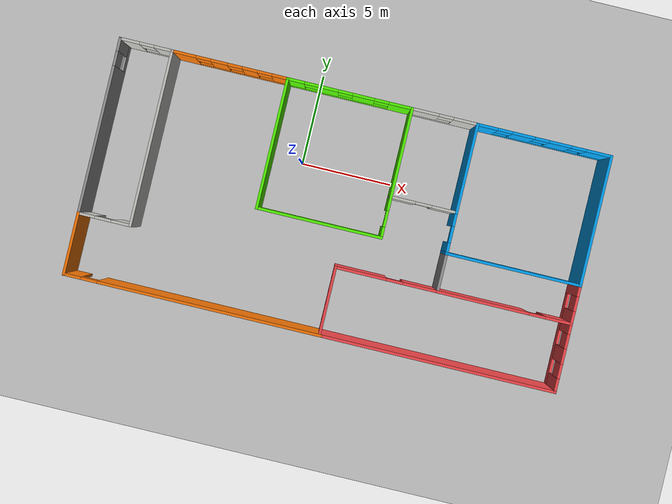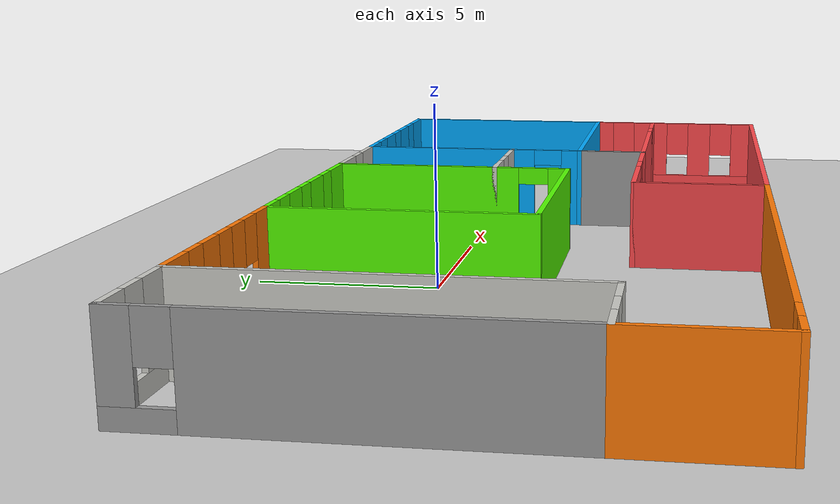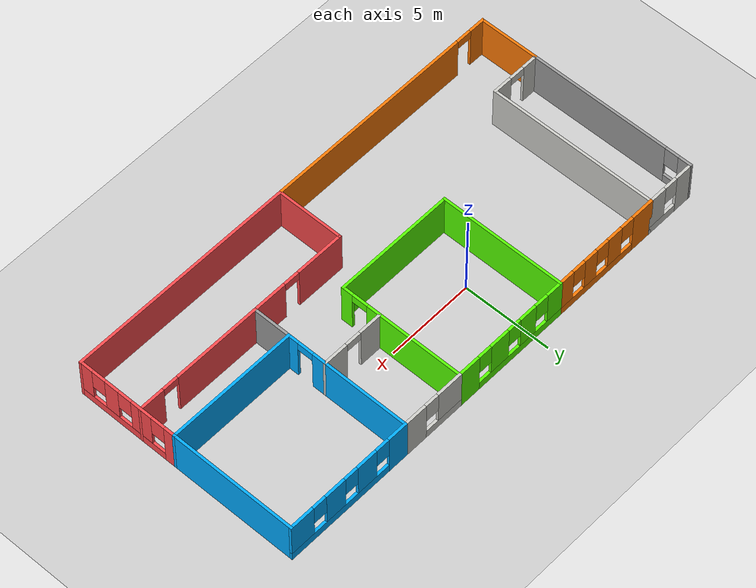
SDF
<sdf version="1.6">
 <world name="default">
  <model name="ground_plane">
   <static>1</static>
   <link name="link">
    <collision name="collision">
     <geometry><plane><normal>0 0 1</normal><size>100 100</size></plane></geometry>
     <surface>
      <contact><collide_bitmask>65535</collide_bitmask></contact>
      <friction><ode><mu>100</mu><mu2>50</mu2></ode></friction>
     </surface>
    </collision>
    <visual name="visual">
     <cast_shadows>0</cast_shadows>
     <geometry><plane><normal>0 0 1</normal><size>100 100</size></plane></geometry>
     <material>
      <script><uri>file://media/materials/scripts/gazebo.material</uri><name>Gazebo/Grey</name></script>
     </material>
    </visual>
   </link>
  </model>
  <model name="house">
   <pose>2.5644 -2.34598 0 0 -0 0</pose>
   <link name="Wall_16">
    <collision name="Wall_16_Collision">
     <geometry><box><size>3.5 0.15 2.5</size></box></geometry>
     <pose>0 0 1.25 0 -0 0</pose>
    </collision>
    <visual name="Wall_16_Visual">
     <pose>0 0 1.25 0 -0 0</pose>
     <geometry><box><size>3.5 0.15 2.5</size></box></geometry>
     <material>
      <script><uri>file://media/materials/scripts/gazebo.material</uri><name>Gazebo/Grey</name></script>
      <ambient>0.996078 0.47451 0.0196078 1</ambient>
     </material>
     <meta><layer>0</layer></meta>
    </visual>
    <pose>-13.5 -4.79998 0 0 -0 1.5708</pose>
   </link>
   <link name="Wall_17">
    <pose>-12.075 -3.12498 0 0 -0 0</pose>
    <visual name="Wall_17_Visual_0">
     <pose>-1.01202 0 1.25 0 -0 0</pose>
     <geometry><box><size>0.97596 0.15 2.5</size></box></geometry>
     <material>
      <script><uri>file://media/materials/scripts/gazebo.material</uri><name>Gazebo/CeilingTiled</name></script>
      <ambient>1 1 1 1</ambient>
     </material>
     <meta><layer>0</layer></meta>
    </visual>
    <collision name="Wall_17_Collision_0">
     <geometry><box><size>0.97596 0.15 2.5</size></box></geometry>
     <pose>-1.01202 0 1.25 0 -0 0</pose>
    </collision>
    <visual name="Wall_17_Visual_1">
     <pose>0.93798 0 1.25 0 -0 0</pose>
     <geometry><box><size>1.12404 0.15 2.5</size></box></geometry>
     <material>
      <script><uri>file://media/materials/scripts/gazebo.material</uri><name>Gazebo/CeilingTiled</name></script>
      <ambient>1 1 1 1</ambient>
     </material>
     <meta><layer>0</layer></meta>
    </visual>
    <collision name="Wall_17_Collision_1">
     <geometry><box><size>1.12404 0.15 2.5</size></box></geometry>
     <pose>0.93798 0 1.25 0 -0 0</pose>
    </collision>
    <visual name="Wall_17_Visual_2">
     <pose>-0.07404 0 2.25 0 -0 0</pose>
     <geometry><box><size>0.9 0.15 0.5</size></box></geometry>
     <material>
      <script><uri>file://media/materials/scripts/gazebo.material</uri><name>Gazebo/CeilingTiled</name></script>
      <ambient>1 1 1 1</ambient>
     </material>
     <meta><layer>0</layer></meta>
    </visual>
    <collision name="Wall_17_Collision_2">
     <geometry><box><size>0.9 0.15 0.5</size></box></geometry>
     <pose>-0.07404 0 2.25 0 -0 0</pose>
    </collision>
   </link>
   <link name="Wall_18">
    <collision name="Wall_18_Collision">
     <geometry><box><size>9.75 0.15 2.5</size></box></geometry>
     <pose>0 0 1.25 0 -0 0</pose>
    </collision>
    <visual name="Wall_18_Visual">
     <pose>0 0 1.25 0 -0 0</pose>
     <geometry><box><size>9.75 0.15 2.5</size></box></geometry>
     <material>
      <script><uri>file://media/materials/scripts/gazebo.material</uri><name>Gazebo/CeilingTiled</name></script>
      <ambient>1 1 1 1</ambient>
     </material>
     <meta><layer>0</layer></meta>
    </visual>
    <pose>-10.65 1.67502 0 0 -0 1.5708</pose>
   </link>
   <link name="Wall_21">
    <pose>-13.5 1.67502 0 0 -0 1.5708</pose>
    <visual name="Wall_21_Visual_0">
     <pose>-0.785204 0 1.25 0 -0 0</pose>
     <geometry><box><size>8.17959 0.15 2.5</size></box></geometry>
     <material>
      <script><uri>file://media/materials/scripts/gazebo.material</uri><name>Gazebo/Grey</name></script>
      <ambient>1 1 1 1</ambient>
     </material>
     <meta><layer>0</layer></meta>
    </visual>
    <collision name="Wall_21_Collision_0">
     <geometry><box><size>8.17959 0.15 2.5</size></box></geometry>
     <pose>-0.785204 0 1.25 0 -0 0</pose>
    </collision>
    <visual name="Wall_21_Visual_1">
     <pose>4.0898 0 0.25 0 -0 0</pose>
     <geometry><box><size>1.57041 0.15 0.5</size></box></geometry>
     <material>
      <script><uri>file://media/materials/scripts/gazebo.material</uri><name>Gazebo/Grey</name></script>
      <ambient>1 1 1 1</ambient>
     </material>
     <meta><layer>0</layer></meta>
    </visual>
    <collision name="Wall_21_Collision_1">
     <geometry><box><size>1.57041 0.15 0.5</size></box></geometry>
     <pose>4.0898 0 0.25 0 -0 0</pose>
    </collision>
    <visual name="Wall_21_Visual_2">
     <pose>4.4898 0 1.5 0 -0 0</pose>
     <geometry><box><size>0.770409 0.15 2</size></box></geometry>
     <material>
      <script><uri>file://media/materials/scripts/gazebo.material</uri><name>Gazebo/Grey</name></script>
      <ambient>1 1 1 1</ambient>
     </material>
     <meta><layer>0</layer></meta>
    </visual>
    <collision name="Wall_21_Collision_2">
     <geometry><box><size>0.770409 0.15 2</size></box></geometry>
     <pose>4.4898 0 1.5 0 -0 0</pose>
    </collision>
    <visual name="Wall_21_Visual_3">
     <pose>3.70459 0 1.9 0 -0 0</pose>
     <geometry><box><size>0.8 0.15 1.2</size></box></geometry>
     <material>
      <script><uri>file://media/materials/scripts/gazebo.material</uri><name>Gazebo/Grey</name></script>
      <ambient>1 1 1 1</ambient>
     </material>
     <meta><layer>0</layer></meta>
    </visual>
    <collision name="Wall_21_Collision_3">
     <geometry><box><size>0.8 0.15 1.2</size></box></geometry>
     <pose>3.70459 0 1.9 0 -0 0</pose>
    </collision>
   </link>
   <link name="Wall_22">
    <pose>-12.075 6.47502 0 0 -0 0</pose>
    <visual name="Wall_22_Visual_0">
     <pose>-0.933912 0 1.25 0 -0 0</pose>
     <geometry><box><size>1.13217 0.15 2.5</size></box></geometry>
     <material>
      <script><uri>file://media/materials/scripts/gazebo.material</uri><name>Gazebo/CeilingTiled</name></script>
      <ambient>1 1 1 1</ambient>
     </material>
     <meta><layer>0</layer></meta>
    </visual>
    <collision name="Wall_22_Collision_0">
     <geometry><box><size>1.13217 0.15 2.5</size></box></geometry>
     <pose>-0.933912 0 1.25 0 -0 0</pose>
    </collision>
    <visual name="Wall_22_Visual_1">
     <pose>0.566088 0 0.25 0 -0 0</pose>
     <geometry><box><size>1.86783 0.15 0.5</size></box></geometry>
     <material>
      <script><uri>file://media/materials/scripts/gazebo.material</uri><name>Gazebo/CeilingTiled</name></script>
      <ambient>1 1 1 1</ambient>
     </material>
     <meta><layer>0</layer></meta>
    </visual>
    <collision name="Wall_22_Collision_1">
     <geometry><box><size>1.86783 0.15 0.5</size></box></geometry>
     <pose>0.566088 0 0.25 0 -0 0</pose>
    </collision>
    <visual name="Wall_22_Visual_2">
     <pose>0.966088 0 1.5 0 -0 0</pose>
     <geometry><box><size>1.06783 0.15 2</size></box></geometry>
     <material>
      <script><uri>file://media/materials/scripts/gazebo.material</uri><name>Gazebo/CeilingTiled</name></script>
      <ambient>1 1 1 1</ambient>
     </material>
     <meta><layer>0</layer></meta>
    </visual>
    <collision name="Wall_22_Collision_2">
     <geometry><box><size>1.06783 0.15 2</size></box></geometry>
     <pose>0.966088 0 1.5 0 -0 0</pose>
    </collision>
    <visual name="Wall_22_Visual_3">
     <pose>0.032175 0 1.9 0 -0 0</pose>
     <geometry><box><size>0.8 0.15 1.2</size></box></geometry>
     <material>
      <script><uri>file://media/materials/scripts/gazebo.material</uri><name>Gazebo/CeilingTiled</name></script>
      <ambient>1 1 1 1</ambient>
     </material>
     <meta><layer>0</layer></meta>
    </visual>
    <collision name="Wall_22_Collision_3">
     <geometry><box><size>0.8 0.15 1.2</size></box></geometry>
     <pose>0.032175 0 1.9 0 -0 0</pose>
    </collision>
   </link>
   <link name="Wall_24">
    <pose>-7.475 6.47502 0 0 -0 0</pose>
    <visual name="Wall_24_Visual_0">
     <pose>-2.56121 0 1.25 0 -0 0</pose>
     <geometry><box><size>1.37759 0.15 2.5</size></box></geometry>
     <material>
      <script><uri>file://media/materials/scripts/gazebo.material</uri><name>Gazebo/Grey</name></script>
      <ambient>0.996078 0.47451 0.0196078 1</ambient>
     </material>
     <meta><layer>0</layer></meta>
    </visual>
    <collision name="Wall_24_Collision_0">
     <geometry><box><size>1.37759 0.15 2.5</size></box></geometry>
     <pose>-2.56121 0 1.25 0 -0 0</pose>
    </collision>
    <visual name="Wall_24_Visual_1">
     <pose>0.688793 0 0.25 0 -0 0</pose>
     <geometry><box><size>5.12241 0.15 0.5</size></box></geometry>
     <material>
      <script><uri>file://media/materials/scripts/gazebo.material</uri><name>Gazebo/Grey</name></script>
      <ambient>0.996078 0.47451 0.0196078 1</ambient>
     </material>
     <meta><layer>0</layer></meta>
    </visual>
    <collision name="Wall_24_Collision_1">
     <geometry><box><size>5.12241 0.15 0.5</size></box></geometry>
     <pose>0.688793 0 0.25 0 -0 0</pose>
    </collision>
    <visual name="Wall_24_Visual_2">
     <pose>-0.600718 0 1.5 0 -0 0</pose>
     <geometry><box><size>0.943392 0.15 2</size></box></geometry>
     <material>
      <script><uri>file://media/materials/scripts/gazebo.material</uri><name>Gazebo/Grey</name></script>
      <ambient>0.996078 0.47451 0.0196078 1</ambient>
     </material>
     <meta><layer>0</layer></meta>
    </visual>
    <collision name="Wall_24_Collision_2">
     <geometry><box><size>0.943392 0.15 2</size></box></geometry>
     <pose>-0.600718 0 1.5 0 -0 0</pose>
    </collision>
    <visual name="Wall_24_Visual_3">
     <pose>1.0893 0 1.5 0 -0 0</pose>
     <geometry><box><size>0.836654 0.15 2</size></box></geometry>
     <material>
      <script><uri>file://media/materials/scripts/gazebo.material</uri><name>Gazebo/Grey</name></script>
      <ambient>0.996078 0.47451 0.0196078 1</ambient>
     </material>
     <meta><layer>0</layer></meta>
    </visual>
    <collision name="Wall_24_Collision_3">
     <geometry><box><size>0.836654 0.15 2</size></box></geometry>
     <pose>1.0893 0 1.5 0 -0 0</pose>
    </collision>
    <visual name="Wall_24_Visual_4">
     <pose>2.77882 0 1.5 0 -0 0</pose>
     <geometry><box><size>0.942368 0.15 2</size></box></geometry>
     <material>
      <script><uri>file://media/materials/scripts/gazebo.material</uri><name>Gazebo/Grey</name></script>
      <ambient>0.996078 0.47451 0.0196078 1</ambient>
     </material>
     <meta><layer>0</layer></meta>
    </visual>
    <collision name="Wall_24_Collision_4">
     <geometry><box><size>0.942368 0.15 2</size></box></geometry>
     <pose>2.77882 0 1.5 0 -0 0</pose>
    </collision>
    <visual name="Wall_24_Visual_5">
     <pose>-1.47241 0 1.9 0 -0 0</pose>
     <geometry><box><size>0.8 0.15 1.2</size></box></geometry>
     <material>
      <script><uri>file://media/materials/scripts/gazebo.material</uri><name>Gazebo/Grey</name></script>
      <ambient>0.996078 0.47451 0.0196078 1</ambient>
     </material>
     <meta><layer>0</layer></meta>
    </visual>
    <collision name="Wall_24_Collision_5">
     <geometry><box><size>0.8 0.15 1.2</size></box></geometry>
     <pose>-1.47241 0 1.9 0 -0 0</pose>
    </collision>
    <visual name="Wall_24_Visual_6">
     <pose>0.270978 0 1.9 0 -0 0</pose>
     <geometry><box><size>0.8 0.15 1.2</size></box></geometry>
     <material>
      <script><uri>file://media/materials/scripts/gazebo.material</uri><name>Gazebo/Grey</name></script>
      <ambient>0.996078 0.47451 0.0196078 1</ambient>
     </material>
     <meta><layer>0</layer></meta>
    </visual>
    <collision name="Wall_24_Collision_6">
     <geometry><box><size>0.8 0.15 1.2</size></box></geometry>
     <pose>0.270978 0 1.9 0 -0 0</pose>
    </collision>
    <visual name="Wall_24_Visual_7">
     <pose>1.90763 0 1.9 0 -0 0</pose>
     <geometry><box><size>0.8 0.15 1.2</size></box></geometry>
     <material>
      <script><uri>file://media/materials/scripts/gazebo.material</uri><name>Gazebo/Grey</name></script>
      <ambient>0.996078 0.47451 0.0196078 1</ambient>
     </material>
     <meta><layer>0</layer></meta>
    </visual>
    <collision name="Wall_24_Collision_7">
     <geometry><box><size>0.8 0.15 1.2</size></box></geometry>
     <pose>1.90763 0 1.9 0 -0 0</pose>
    </collision>
   </link>
   <link name="Wall_28">
    <collision name="Wall_28_Collision">
     <geometry><box><size>7.25 0.15 2.5</size></box></geometry>
     <pose>0 0 1.25 0 -0 0</pose>
    </collision>
    <visual name="Wall_28_Visual">
     <pose>0 0 1.25 0 -0 0</pose>
     <geometry><box><size>7.25 0.15 2.5</size></box></geometry>
     <material>
      <script><uri>file://media/materials/scripts/gazebo.material</uri><name>Gazebo/Grey</name></script>
      <ambient>0.333333 1 0 1</ambient>
     </material>
     <meta><layer>0</layer></meta>
    </visual>
    <pose>-4.3 2.92502 0 0 0 -1.5708</pose>
   </link>
   <link name="Wall_36">
    <collision name="Wall_36_Collision">
     <geometry><box><size>7 0.15 2.5</size></box></geometry>
     <pose>0 0 1.25 0 -0 0</pose>
    </collision>
    <visual name="Wall_36_Visual">
     <pose>0 0 1.25 0 -0 0</pose>
     <geometry><box><size>7 0.15 2.5</size></box></geometry>
     <material>
      <script><uri>file://media/materials/scripts/gazebo.material</uri><name>Gazebo/Grey</name></script>
      <ambient>0.333333 1 0 1</ambient>
     </material>
     <meta><layer>0</layer></meta>
    </visual>
    <pose>-0.875002 -0.624977 0 0 -0 0</pose>
   </link>
   <link name="Wall_37">
    <pose>2.55 2.92502 0 0 -0 1.5708</pose>
    <visual name="Wall_37_Visual_0">
     <pose>-3.28581 0 1.25 0 -0 0</pose>
     <geometry><box><size>0.678378 0.15 2.5</size></box></geometry>
     <material>
      <script><uri>file://media/materials/scripts/gazebo.material</uri><name>Gazebo/Grey</name></script>
      <ambient>0.333333 1 0 1</ambient>
     </material>
     <meta><layer>0</layer></meta>
    </visual>
    <collision name="Wall_37_Collision_0">
     <geometry><box><size>0.678378 0.15 2.5</size></box></geometry>
     <pose>-3.28581 0 1.25 0 -0 0</pose>
    </collision>
    <visual name="Wall_37_Visual_1">
     <pose>0.789189 0 1.25 0 -0 0</pose>
     <geometry><box><size>5.67162 0.15 2.5</size></box></geometry>
     <material>
      <script><uri>file://media/materials/scripts/gazebo.material</uri><name>Gazebo/Grey</name></script>
      <ambient>0.333333 1 0 1</ambient>
     </material>
     <meta><layer>0</layer></meta>
    </visual>
    <collision name="Wall_37_Collision_1">
     <geometry><box><size>5.67162 0.15 2.5</size></box></geometry>
     <pose>0.789189 0 1.25 0 -0 0</pose>
    </collision>
    <visual name="Wall_37_Visual_2">
     <pose>-2.49662 0 2.25 0 -0 0</pose>
     <geometry><box><size>0.9 0.15 0.5</size></box></geometry>
     <material>
      <script><uri>file://media/materials/scripts/gazebo.material</uri><name>Gazebo/Grey</name></script>
      <ambient>0.333333 1 0 1</ambient>
     </material>
     <meta><layer>0</layer></meta>
    </visual>
    <collision name="Wall_37_Collision_2">
     <geometry><box><size>0.9 0.15 0.5</size></box></geometry>
     <pose>-2.49662 0 2.25 0 -0 0</pose>
    </collision>
   </link>
   <link name="Wall_38">
    <pose>-0.875002 6.47502 0 0 -0 3.14159</pose>
    <visual name="Wall_38_Visual_0">
     <pose>-2.82375 0 1.25 0 -0 0</pose>
     <geometry><box><size>1.35249 0.15 2.5</size></box></geometry>
     <material>
      <script><uri>file://media/materials/scripts/gazebo.material</uri><name>Gazebo/Grey</name></script>
      <ambient>0.333333 1 0 1</ambient>
     </material>
     <meta><layer>0</layer></meta>
    </visual>
    <collision name="Wall_38_Collision_0">
     <geometry><box><size>1.35249 0.15 2.5</size></box></geometry>
     <pose>-2.82375 0 1.25 0 -0 0</pose>
    </collision>
    <visual name="Wall_38_Visual_1">
     <pose>0.676246 0 0.25 0 -0 0</pose>
     <geometry><box><size>5.64751 0.15 0.5</size></box></geometry>
     <material>
      <script><uri>file://media/materials/scripts/gazebo.material</uri><name>Gazebo/Grey</name></script>
      <ambient>0.333333 1 0 1</ambient>
     </material>
     <meta><layer>0</layer></meta>
    </visual>
    <collision name="Wall_38_Collision_1">
     <geometry><box><size>5.64751 0.15 0.5</size></box></geometry>
     <pose>0.676246 0 0.25 0 -0 0</pose>
    </collision>
    <visual name="Wall_38_Visual_2">
     <pose>-0.751284 0 1.5 0 -0 0</pose>
     <geometry><box><size>1.19245 0.15 2</size></box></geometry>
     <material>
      <script><uri>file://media/materials/scripts/gazebo.material</uri><name>Gazebo/Grey</name></script>
      <ambient>0.333333 1 0 1</ambient>
     </material>
     <meta><layer>0</layer></meta>
    </visual>
    <collision name="Wall_38_Collision_2">
     <geometry><box><size>1.19245 0.15 2</size></box></geometry>
     <pose>-0.751284 0 1.5 0 -0 0</pose>
    </collision>
    <visual name="Wall_38_Visual_3">
     <pose>1.17 0 1.5 0 -0 0</pose>
     <geometry><box><size>1.05013 0.15 2</size></box></geometry>
     <material>
      <script><uri>file://media/materials/scripts/gazebo.material</uri><name>Gazebo/Grey</name></script>
      <ambient>0.333333 1 0 1</ambient>
     </material>
     <meta><layer>0</layer></meta>
    </visual>
    <collision name="Wall_38_Collision_3">
     <geometry><box><size>1.05013 0.15 2</size></box></geometry>
     <pose>1.17 0 1.5 0 -0 0</pose>
    </collision>
    <visual name="Wall_38_Visual_4">
     <pose>2.99754 0 1.5 0 -0 0</pose>
     <geometry><box><size>1.00493 0.15 2</size></box></geometry>
     <material>
      <script><uri>file://media/materials/scripts/gazebo.material</uri><name>Gazebo/Grey</name></script>
      <ambient>0.333333 1 0 1</ambient>
     </material>
     <meta><layer>0</layer></meta>
    </visual>
    <collision name="Wall_38_Collision_4">
     <geometry><box><size>1.00493 0.15 2</size></box></geometry>
     <pose>2.99754 0 1.5 0 -0 0</pose>
    </collision>
    <visual name="Wall_38_Visual_5">
     <pose>-1.74751 0 1.9 0 -0 0</pose>
     <geometry><box><size>0.8 0.15 1.2</size></box></geometry>
     <material>
      <script><uri>file://media/materials/scripts/gazebo.material</uri><name>Gazebo/Grey</name></script>
      <ambient>0.333333 1 0 1</ambient>
     </material>
     <meta><layer>0</layer></meta>
    </visual>
    <collision name="Wall_38_Collision_5">
     <geometry><box><size>0.8 0.15 1.2</size></box></geometry>
     <pose>-1.74751 0 1.9 0 -0 0</pose>
    </collision>
    <visual name="Wall_38_Visual_6">
     <pose>0.24494 0 1.9 0 -0 0</pose>
     <geometry><box><size>0.8 0.15 1.2</size></box></geometry>
     <material>
      <script><uri>file://media/materials/scripts/gazebo.material</uri><name>Gazebo/Grey</name></script>
      <ambient>0.333333 1 0 1</ambient>
     </material>
     <meta><layer>0</layer></meta>
    </visual>
    <collision name="Wall_38_Collision_6">
     <geometry><box><size>0.8 0.15 1.2</size></box></geometry>
     <pose>0.24494 0 1.9 0 -0 0</pose>
    </collision>
    <visual name="Wall_38_Visual_7">
     <pose>2.09507 0 1.9 0 -0 0</pose>
     <geometry><box><size>0.8 0.15 1.2</size></box></geometry>
     <material>
      <script><uri>file://media/materials/scripts/gazebo.material</uri><name>Gazebo/Grey</name></script>
      <ambient>0.333333 1 0 1</ambient>
     </material>
     <meta><layer>0</layer></meta>
    </visual>
    <collision name="Wall_38_Collision_7">
     <geometry><box><size>0.8 0.15 1.2</size></box></geometry>
     <pose>2.09507 0 1.9 0 -0 0</pose>
    </collision>
   </link>
   <link name="Wall_42">
    <pose>4.35 6.47502 0 0 -0 3.14159</pose>
    <visual name="Wall_42_Visual_0">
     <pose>-1.17773 0 1.25 0 -0 0</pose>
     <geometry><box><size>1.39455 0.15 2.5</size></box></geometry>
     <material>
      <script><uri>file://media/materials/scripts/gazebo.material</uri><name>Gazebo/CeilingTiled</name></script>
      <ambient>1 1 1 1</ambient>
     </material>
     <meta><layer>0</layer></meta>
    </visual>
    <collision name="Wall_42_Collision_0">
     <geometry><box><size>1.39455 0.15 2.5</size></box></geometry>
     <pose>-1.17773 0 1.25 0 -0 0</pose>
    </collision>
    <visual name="Wall_42_Visual_1">
     <pose>0.697274 0 0.25 0 -0 0</pose>
     <geometry><box><size>2.35545 0.15 0.5</size></box></geometry>
     <material>
      <script><uri>file://media/materials/scripts/gazebo.material</uri><name>Gazebo/CeilingTiled</name></script>
      <ambient>1 1 1 1</ambient>
     </material>
     <meta><layer>0</layer></meta>
    </visual>
    <collision name="Wall_42_Collision_1">
     <geometry><box><size>2.35545 0.15 0.5</size></box></geometry>
     <pose>0.697274 0 0.25 0 -0 0</pose>
    </collision>
    <visual name="Wall_42_Visual_2">
     <pose>1.09727 0 1.5 0 -0 0</pose>
     <geometry><box><size>1.55545 0.15 2</size></box></geometry>
     <material>
      <script><uri>file://media/materials/scripts/gazebo.material</uri><name>Gazebo/CeilingTiled</name></script>
      <ambient>1 1 1 1</ambient>
     </material>
     <meta><layer>0</layer></meta>
    </visual>
    <collision name="Wall_42_Collision_2">
     <geometry><box><size>1.55545 0.15 2</size></box></geometry>
     <pose>1.09727 0 1.5 0 -0 0</pose>
    </collision>
    <visual name="Wall_42_Visual_3">
     <pose>-0.080451 0 1.9 0 -0 0</pose>
     <geometry><box><size>0.8 0.15 1.2</size></box></geometry>
     <material>
      <script><uri>file://media/materials/scripts/gazebo.material</uri><name>Gazebo/CeilingTiled</name></script>
      <ambient>1 1 1 1</ambient>
     </material>
     <meta><layer>0</layer></meta>
    </visual>
    <collision name="Wall_42_Collision_3">
     <geometry><box><size>0.8 0.15 1.2</size></box></geometry>
     <pose>-0.080451 0 1.9 0 -0 0</pose>
    </collision>
   </link>
   <link name="Wall_44">
    <pose>9.825 6.47502 0 0 -0 0</pose>
    <visual name="Wall_44_Visual_0">
     <pose>-3.15341 0 1.25 0 -0 0</pose>
     <geometry><box><size>1.19318 0.15 2.5</size></box></geometry>
     <material>
      <script><uri>file://media/materials/scripts/gazebo.material</uri><name>Gazebo/Grey</name></script>
      <ambient>0 0.666667 1 1</ambient>
     </material>
     <meta><layer>0</layer></meta>
    </visual>
    <collision name="Wall_44_Collision_0">
     <geometry><box><size>1.19318 0.15 2.5</size></box></geometry>
     <pose>-3.15341 0 1.25 0 -0 0</pose>
    </collision>
    <visual name="Wall_44_Visual_1">
     <pose>0.596589 0 0.25 0 -0 0</pose>
     <geometry><box><size>6.30682 0.15 0.5</size></box></geometry>
     <material>
      <script><uri>file://media/materials/scripts/gazebo.material</uri><name>Gazebo/Grey</name></script>
      <ambient>0 0.666667 1 1</ambient>
     </material>
     <meta><layer>0</layer></meta>
    </visual>
    <collision name="Wall_44_Collision_1">
     <geometry><box><size>6.30682 0.15 0.5</size></box></geometry>
     <pose>0.596589 0 0.25 0 -0 0</pose>
    </collision>
    <visual name="Wall_44_Visual_2">
     <pose>-1.14281 0 1.5 0 -0 0</pose>
     <geometry><box><size>1.22803 0.15 2</size></box></geometry>
     <material>
      <script><uri>file://media/materials/scripts/gazebo.material</uri><name>Gazebo/Grey</name></script>
      <ambient>0 0.666667 1 1</ambient>
     </material>
     <meta><layer>0</layer></meta>
    </visual>
    <collision name="Wall_44_Collision_2">
     <geometry><box><size>1.22803 0.15 2</size></box></geometry>
     <pose>-1.14281 0 1.5 0 -0 0</pose>
    </collision>
    <visual name="Wall_44_Visual_3">
     <pose>0.88522 0 1.5 0 -0 0</pose>
     <geometry><box><size>1.22803 0.15 2</size></box></geometry>
     <material>
      <script><uri>file://media/materials/scripts/gazebo.material</uri><name>Gazebo/Grey</name></script>
      <ambient>0 0.666667 1 1</ambient>
     </material>
     <meta><layer>0</layer></meta>
    </visual>
    <collision name="Wall_44_Collision_3">
     <geometry><box><size>1.22803 0.15 2</size></box></geometry>
     <pose>0.88522 0 1.5 0 -0 0</pose>
    </collision>
    <visual name="Wall_44_Visual_4">
     <pose>3.02462 0 1.5 0 -0 0</pose>
     <geometry><box><size>1.45077 0.15 2</size></box></geometry>
     <material>
      <script><uri>file://media/materials/scripts/gazebo.material</uri><name>Gazebo/Grey</name></script>
      <ambient>0 0.666667 1 1</ambient>
     </material>
     <meta><layer>0</layer></meta>
    </visual>
    <collision name="Wall_44_Collision_4">
     <geometry><box><size>1.45077 0.15 2</size></box></geometry>
     <pose>3.02462 0 1.5 0 -0 0</pose>
    </collision>
    <visual name="Wall_44_Visual_5">
     <pose>-2.15682 0 1.9 0 -0 0</pose>
     <geometry><box><size>0.8 0.15 1.2</size></box></geometry>
     <material>
      <script><uri>file://media/materials/scripts/gazebo.material</uri><name>Gazebo/Grey</name></script>
      <ambient>0 0.666667 1 1</ambient>
     </material>
     <meta><layer>0</layer></meta>
    </visual>
    <collision name="Wall_44_Collision_5">
     <geometry><box><size>0.8 0.15 1.2</size></box></geometry>
     <pose>-2.15682 0 1.9 0 -0 0</pose>
    </collision>
    <visual name="Wall_44_Visual_6">
     <pose>-0.128794 0 1.9 0 -0 0</pose>
     <geometry><box><size>0.8 0.15 1.2</size></box></geometry>
     <material>
      <script><uri>file://media/materials/scripts/gazebo.material</uri><name>Gazebo/Grey</name></script>
      <ambient>0 0.666667 1 1</ambient>
     </material>
     <meta><layer>0</layer></meta>
    </visual>
    <collision name="Wall_44_Collision_6">
     <geometry><box><size>0.8 0.15 1.2</size></box></geometry>
     <pose>-0.128794 0 1.9 0 -0 0</pose>
    </collision>
    <visual name="Wall_44_Visual_7">
     <pose>1.89923 0 1.9 0 -0 0</pose>
     <geometry><box><size>0.8 0.15 1.2</size></box></geometry>
     <material>
      <script><uri>file://media/materials/scripts/gazebo.material</uri><name>Gazebo/Grey</name></script>
      <ambient>0 0.666667 1 1</ambient>
     </material>
     <meta><layer>0</layer></meta>
    </visual>
    <collision name="Wall_44_Collision_7">
     <geometry><box><size>0.8 0.15 1.2</size></box></geometry>
     <pose>1.89923 0 1.9 0 -0 0</pose>
    </collision>
   </link>
   <link name="Wall_48">
    <collision name="Wall_48_Collision">
     <geometry><box><size>5 0.15 2.5</size></box></geometry>
     <pose>0 0 1.25 0 -0 0</pose>
    </collision>
    <visual name="Wall_48_Visual">
     <pose>0 0 1.25 0 -0 0</pose>
     <geometry><box><size>5 0.15 2.5</size></box></geometry>
     <material>
      <script><uri>file://media/materials/scripts/gazebo.material</uri><name>Gazebo/Grey</name></script>
      <ambient>0 0.666667 1 1</ambient>
     </material>
     <meta><layer>0</layer></meta>
    </visual>
    <pose>6.15 4.05002 0 0 0 -1.5708</pose>
   </link>
   <link name="Wall_50">
    <pose>4.35 1.62502 0 0 -0 3.14159</pose>
    <visual name="Wall_50_Visual_0">
     <pose>-1.15618 0 1.25 0 -0 0</pose>
     <geometry><box><size>1.43765 0.15 2.5</size></box></geometry>
     <material>
      <script><uri>file://media/materials/scripts/gazebo.material</uri><name>Gazebo/CeilingTiled</name></script>
      <ambient>1 1 1 1</ambient>
     </material>
     <meta><layer>0</layer></meta>
    </visual>
    <collision name="Wall_50_Collision_0">
     <geometry><box><size>1.43765 0.15 2.5</size></box></geometry>
     <pose>-1.15618 0 1.25 0 -0 0</pose>
    </collision>
    <visual name="Wall_50_Visual_1">
     <pose>1.16882 0 1.25 0 -0 0</pose>
     <geometry><box><size>1.41235 0.15 2.5</size></box></geometry>
     <material>
      <script><uri>file://media/materials/scripts/gazebo.material</uri><name>Gazebo/CeilingTiled</name></script>
      <ambient>1 1 1 1</ambient>
     </material>
     <meta><layer>0</layer></meta>
    </visual>
    <collision name="Wall_50_Collision_1">
     <geometry><box><size>1.41235 0.15 2.5</size></box></geometry>
     <pose>1.16882 0 1.25 0 -0 0</pose>
    </collision>
    <visual name="Wall_50_Visual_2">
     <pose>0.012646 0 2.25 0 -0 0</pose>
     <geometry><box><size>0.9 0.15 0.5</size></box></geometry>
     <material>
      <script><uri>file://media/materials/scripts/gazebo.material</uri><name>Gazebo/CeilingTiled</name></script>
      <ambient>1 1 1 1</ambient>
     </material>
     <meta><layer>0</layer></meta>
    </visual>
    <collision name="Wall_50_Collision_2">
     <geometry><box><size>0.9 0.15 0.5</size></box></geometry>
     <pose>0.012646 0 2.25 0 -0 0</pose>
    </collision>
   </link>
   <link name="Wall_52">
    <collision name="Wall_52_Collision">
     <geometry><box><size>7.25 0.15 2.5</size></box></geometry>
     <pose>0 0 1.25 0 -0 0</pose>
    </collision>
    <visual name="Wall_52_Visual">
     <pose>0 0 1.25 0 -0 0</pose>
     <geometry><box><size>7.25 0.15 2.5</size></box></geometry>
     <material>
      <script><uri>file://media/materials/scripts/gazebo.material</uri><name>Gazebo/Grey</name></script>
      <ambient>0 0.666667 1 1</ambient>
     </material>
     <meta><layer>0</layer></meta>
    </visual>
    <pose>13.4998 2.925 0 0 0 -1.57085</pose>
   </link>
   <link name="Wall_53">
    <collision name="Wall_53_Collision">
     <geometry><box><size>7.5 0.15 2.5</size></box></geometry>
     <pose>0 0 1.25 0 -0 0</pose>
    </collision>
    <visual name="Wall_53_Visual">
     <pose>0 0 1.25 0 -0 0</pose>
     <geometry><box><size>7.5 0.15 2.5</size></box></geometry>
     <material>
      <script><uri>file://media/materials/scripts/gazebo.material</uri><name>Gazebo/Grey</name></script>
      <ambient>0 0.666667 1 1</ambient>
     </material>
     <meta><layer>0</layer></meta>
    </visual>
    <pose>9.82481 -0.625 0 0 -0 3.14159</pose>
   </link>
   <link name="Wall_54">
    <pose>6.15 0.500023 0 0 -0 1.5708</pose>
    <visual name="Wall_54_Visual_0">
     <pose>-0.860811 0 1.25 0 -0 0</pose>
     <geometry><box><size>0.678378 0.15 2.5</size></box></geometry>
     <material>
      <script><uri>file://media/materials/scripts/gazebo.material</uri><name>Gazebo/Grey</name></script>
      <ambient>0 0.666667 1 1</ambient>
     </material>
     <meta><layer>0</layer></meta>
    </visual>
    <collision name="Wall_54_Collision_0">
     <geometry><box><size>0.678378 0.15 2.5</size></box></geometry>
     <pose>-0.860811 0 1.25 0 -0 0</pose>
    </collision>
    <visual name="Wall_54_Visual_1">
     <pose>0.789189 0 1.25 0 -0 0</pose>
     <geometry><box><size>0.821622 0.15 2.5</size></box></geometry>
     <material>
      <script><uri>file://media/materials/scripts/gazebo.material</uri><name>Gazebo/Grey</name></script>
      <ambient>0 0.666667 1 1</ambient>
     </material>
     <meta><layer>0</layer></meta>
    </visual>
    <collision name="Wall_54_Collision_1">
     <geometry><box><size>0.821622 0.15 2.5</size></box></geometry>
     <pose>0.789189 0 1.25 0 -0 0</pose>
    </collision>
    <visual name="Wall_54_Visual_2">
     <pose>-0.071622 0 2.25 0 -0 0</pose>
     <geometry><box><size>0.9 0.15 0.5</size></box></geometry>
     <material>
      <script><uri>file://media/materials/scripts/gazebo.material</uri><name>Gazebo/Grey</name></script>
      <ambient>0 0.666667 1 1</ambient>
     </material>
     <meta><layer>0</layer></meta>
    </visual>
    <collision name="Wall_54_Collision_2">
     <geometry><box><size>0.9 0.15 0.5</size></box></geometry>
     <pose>-0.071622 0 2.25 0 -0 0</pose>
    </collision>
   </link>
   <link name="Wall_70">
    <pose>13.4996 -3.55002 0 0 0 -1.5708</pose>
    <visual name="Wall_70_Visual_0">
     <pose>-2.66025 0 1.25 0 -0 0</pose>
     <geometry><box><size>0.67951 0.15 2.5</size></box></geometry>
     <material>
      <script><uri>file://media/materials/scripts/gazebo.material</uri><name>Gazebo/Grey</name></script>
      <ambient>1 0.290196 0.301961 1</ambient>
     </material>
     <meta><layer>0</layer></meta>
    </visual>
    <collision name="Wall_70_Collision_0">
     <geometry><box><size>0.67951 0.15 2.5</size></box></geometry>
     <pose>-2.66025 0 1.25 0 -0 0</pose>
    </collision>
    <visual name="Wall_70_Visual_1">
     <pose>0.339755 0 0.25 0 -0 0</pose>
     <geometry><box><size>5.32049 0.15 0.5</size></box></geometry>
     <material>
      <script><uri>file://media/materials/scripts/gazebo.material</uri><name>Gazebo/Grey</name></script>
      <ambient>1 0.290196 0.301961 1</ambient>
     </material>
     <meta><layer>0</layer></meta>
    </visual>
    <collision name="Wall_70_Collision_1">
     <geometry><box><size>5.32049 0.15 0.5</size></box></geometry>
     <pose>0.339755 0 0.25 0 -0 0</pose>
    </collision>
    <visual name="Wall_70_Visual_2">
     <pose>-0.888686 0 1.5 0 -0 0</pose>
     <geometry><box><size>1.26361 0.15 2</size></box></geometry>
     <material>
      <script><uri>file://media/materials/scripts/gazebo.material</uri><name>Gazebo/Grey</name></script>
      <ambient>1 0.290196 0.301961 1</ambient>
     </material>
     <meta><layer>0</layer></meta>
    </visual>
    <collision name="Wall_70_Collision_2">
     <geometry><box><size>1.26361 0.15 2</size></box></geometry>
     <pose>-0.888686 0 1.5 0 -0 0</pose>
    </collision>
    <visual name="Wall_70_Visual_3">
     <pose>0.961444 0 1.5 0 -0 0</pose>
     <geometry><box><size>0.836654 0.15 2</size></box></geometry>
     <material>
      <script><uri>file://media/materials/scripts/gazebo.material</uri><name>Gazebo/Grey</name></script>
      <ambient>1 0.290196 0.301961 1</ambient>
     </material>
     <meta><layer>0</layer></meta>
    </visual>
    <collision name="Wall_70_Collision_3">
     <geometry><box><size>0.836654 0.15 2</size></box></geometry>
     <pose>0.961444 0 1.5 0 -0 0</pose>
    </collision>
    <visual name="Wall_70_Visual_4">
     <pose>2.58989 0 1.5 0 -0 0</pose>
     <geometry><box><size>0.820229 0.15 2</size></box></geometry>
     <material>
      <script><uri>file://media/materials/scripts/gazebo.material</uri><name>Gazebo/Grey</name></script>
      <ambient>1 0.290196 0.301961 1</ambient>
     </material>
     <meta><layer>0</layer></meta>
    </visual>
    <collision name="Wall_70_Collision_4">
     <geometry><box><size>0.820229 0.15 2</size></box></geometry>
     <pose>2.58989 0 1.5 0 -0 0</pose>
    </collision>
    <visual name="Wall_70_Visual_5">
     <pose>-1.92049 0 1.9 0 -0 0</pose>
     <geometry><box><size>0.8 0.15 1.2</size></box></geometry>
     <material>
      <script><uri>file://media/materials/scripts/gazebo.material</uri><name>Gazebo/Grey</name></script>
      <ambient>1 0.290196 0.301961 1</ambient>
     </material>
     <meta><layer>0</layer></meta>
    </visual>
    <collision name="Wall_70_Collision_5">
     <geometry><box><size>0.8 0.15 1.2</size></box></geometry>
     <pose>-1.92049 0 1.9 0 -0 0</pose>
    </collision>
    <visual name="Wall_70_Visual_6">
     <pose>0.143117 0 1.9 0 -0 0</pose>
     <geometry><box><size>0.8 0.15 1.2</size></box></geometry>
     <material>
      <script><uri>file://media/materials/scripts/gazebo.material</uri><name>Gazebo/Grey</name></script>
      <ambient>1 0.290196 0.301961 1</ambient>
     </material>
     <meta><layer>0</layer></meta>
    </visual>
    <collision name="Wall_70_Collision_6">
     <geometry><box><size>0.8 0.15 1.2</size></box></geometry>
     <pose>0.143117 0 1.9 0 -0 0</pose>
    </collision>
    <visual name="Wall_70_Visual_7">
     <pose>1.77977 0 1.9 0 -0 0</pose>
     <geometry><box><size>0.8 0.15 1.2</size></box></geometry>
     <material>
      <script><uri>file://media/materials/scripts/gazebo.material</uri><name>Gazebo/Grey</name></script>
      <ambient>1 0.290196 0.301961 1</ambient>
     </material>
     <meta><layer>0</layer></meta>
    </visual>
    <collision name="Wall_70_Collision_7">
     <geometry><box><size>0.8 0.15 1.2</size></box></geometry>
     <pose>1.77977 0 1.9 0 -0 0</pose>
    </collision>
   </link>
   <link name="Wall_74">
    <collision name="Wall_74_Collision">
     <geometry><box><size>2.25 0.15 2.5</size></box></geometry>
     <pose>0 0 1.25 0 -0 0</pose>
    </collision>
    <visual name="Wall_74_Visual">
     <pose>0 0 1.25 0 -0 0</pose>
     <geometry><box><size>2.25 0.15 2.5</size></box></geometry>
     <material>
      <script><uri>file://media/materials/scripts/gazebo.material</uri><name>Gazebo/Grey</name></script>
      <ambient>1 1 1 1</ambient>
     </material>
     <meta><layer>0</layer></meta>
    </visual>
    <pose>6.15 -1.67498 0 0 0 -1.5708</pose>
   </link>
   <link name="Wall_75">
    <pose>9.825 -2.72498 0 0 -0 0</pose>
    <visual name="Wall_75_Visual_0">
     <pose>-1.19909 0 1.25 0 -0 0</pose>
     <geometry><box><size>5.10182 0.15 2.5</size></box></geometry>
     <material>
      <script><uri>file://media/materials/scripts/gazebo.material</uri><name>Gazebo/Grey</name></script>
      <ambient>1 0.290196 0.301961 1</ambient>
     </material>
     <meta><layer>0</layer></meta>
    </visual>
    <collision name="Wall_75_Collision_0">
     <geometry><box><size>5.10182 0.15 2.5</size></box></geometry>
     <pose>-1.19909 0 1.25 0 -0 0</pose>
    </collision>
    <visual name="Wall_75_Visual_1">
     <pose>3.00091 0 1.25 0 -0 0</pose>
     <geometry><box><size>1.49818 0.15 2.5</size></box></geometry>
     <material>
      <script><uri>file://media/materials/scripts/gazebo.material</uri><name>Gazebo/Grey</name></script>
      <ambient>1 0.290196 0.301961 1</ambient>
     </material>
     <meta><layer>0</layer></meta>
    </visual>
    <collision name="Wall_75_Collision_1">
     <geometry><box><size>1.49818 0.15 2.5</size></box></geometry>
     <pose>3.00091 0 1.25 0 -0 0</pose>
    </collision>
    <visual name="Wall_75_Visual_2">
     <pose>1.80182 0 2.25 0 -0 0</pose>
     <geometry><box><size>0.9 0.15 0.5</size></box></geometry>
     <material>
      <script><uri>file://media/materials/scripts/gazebo.material</uri><name>Gazebo/Grey</name></script>
      <ambient>1 0.290196 0.301961 1</ambient>
     </material>
     <meta><layer>0</layer></meta>
    </visual>
    <collision name="Wall_75_Collision_2">
     <geometry><box><size>0.9 0.15 0.5</size></box></geometry>
     <pose>1.80182 0 2.25 0 -0 0</pose>
    </collision>
   </link>
   <link name="Wall_77">
    <pose>3.35 -2.72498 0 0 -0 3.14159</pose>
    <visual name="Wall_77_Visual_0">
     <pose>-1.87906 0 1.25 0 -0 0</pose>
     <geometry><box><size>1.99187 0.15 2.5</size></box></geometry>
     <material>
      <script><uri>file://media/materials/scripts/gazebo.material</uri><name>Gazebo/Grey</name></script>
      <ambient>1 0.290196 0.301961 1</ambient>
     </material>
     <meta><layer>0</layer></meta>
    </visual>
    <collision name="Wall_77_Collision_0">
     <geometry><box><size>1.99187 0.15 2.5</size></box></geometry>
     <pose>-1.87906 0 1.25 0 -0 0</pose>
    </collision>
    <visual name="Wall_77_Visual_1">
     <pose>1.44593 0 1.25 0 -0 0</pose>
     <geometry><box><size>2.85813 0.15 2.5</size></box></geometry>
     <material>
      <script><uri>file://media/materials/scripts/gazebo.material</uri><name>Gazebo/Grey</name></script>
      <ambient>1 0.290196 0.301961 1</ambient>
     </material>
     <meta><layer>0</layer></meta>
    </visual>
    <collision name="Wall_77_Collision_1">
     <geometry><box><size>2.85813 0.15 2.5</size></box></geometry>
     <pose>1.44593 0 1.25 0 -0 0</pose>
    </collision>
    <visual name="Wall_77_Visual_2">
     <pose>-0.43313 0 2.25 0 -0 0</pose>
     <geometry><box><size>0.9 0.15 0.5</size></box></geometry>
     <material>
      <script><uri>file://media/materials/scripts/gazebo.material</uri><name>Gazebo/Grey</name></script>
      <ambient>1 0.290196 0.301961 1</ambient>
     </material>
     <meta><layer>0</layer></meta>
    </visual>
    <collision name="Wall_77_Collision_2">
     <geometry><box><size>0.9 0.15 0.5</size></box></geometry>
     <pose>-0.43313 0 2.25 0 -0 0</pose>
    </collision>
   </link>
   <link name="Wall_78">
    <collision name="Wall_78_Collision">
     <geometry><box><size>3.75 0.15 2.5</size></box></geometry>
     <pose>0 0 1.25 0 -0 0</pose>
    </collision>
    <visual name="Wall_78_Visual">
     <pose>0 0 1.25 0 -0 0</pose>
     <geometry><box><size>3.75 0.15 2.5</size></box></geometry>
     <material>
      <script><uri>file://media/materials/scripts/gazebo.material</uri><name>Gazebo/Grey</name></script>
      <ambient>0.956863 0.278431 0.286275 1</ambient>
     </material>
     <meta><layer>0</layer></meta>
    </visual>
    <pose>0.549998 -4.52498 0 0 0 -1.5708</pose>
   </link>
   <link name="Wall_80">
    <pose>-6.45 -6.47498 0 0 -0 0</pose>
    <visual name="Wall_80_Visual_0">
     <pose>-6.61949 0 1.25 0 -0 0</pose>
     <geometry><box><size>1.01102 0.15 2.5</size></box></geometry>
     <material>
      <script><uri>file://media/materials/scripts/gazebo.material</uri><name>Gazebo/Grey</name></script>
      <ambient>0.996078 0.47451 0.0196078 1</ambient>
     </material>
     <meta><layer>0</layer></meta>
    </visual>
    <collision name="Wall_80_Collision_0">
     <geometry><box><size>1.01102 0.15 2.5</size></box></geometry>
     <pose>-6.61949 0 1.25 0 -0 0</pose>
    </collision>
    <visual name="Wall_80_Visual_1">
     <pose>0.955508 0 1.25 0 -0 0</pose>
     <geometry><box><size>12.339 0.15 2.5</size></box></geometry>
     <material>
      <script><uri>file://media/materials/scripts/gazebo.material</uri><name>Gazebo/Grey</name></script>
      <ambient>0.996078 0.47451 0.0196078 1</ambient>
     </material>
     <meta><layer>0</layer></meta>
    </visual>
    <collision name="Wall_80_Collision_1">
     <geometry><box><size>12.339 0.15 2.5</size></box></geometry>
     <pose>0.955508 0 1.25 0 -0 0</pose>
    </collision>
    <visual name="Wall_80_Visual_2">
     <pose>-5.66398 0 2.25 0 -0 0</pose>
     <geometry><box><size>0.9 0.15 0.5</size></box></geometry>
     <material>
      <script><uri>file://media/materials/scripts/gazebo.material</uri><name>Gazebo/Grey</name></script>
      <ambient>0.996078 0.47451 0.0196078 1</ambient>
     </material>
     <meta><layer>0</layer></meta>
    </visual>
    <collision name="Wall_80_Collision_2">
     <geometry><box><size>0.9 0.15 0.5</size></box></geometry>
     <pose>-5.66398 0 2.25 0 -0 0</pose>
    </collision>
   </link>
   <link name="Wall_81">
    <collision name="Wall_81_Collision">
     <geometry><box><size>13.0496 0.15 2.5</size></box></geometry>
     <pose>0 0 1.25 0 -0 0</pose>
    </collision>
    <visual name="Wall_81_Visual">
     <pose>0 0 1.25 0 -0 0</pose>
     <geometry><box><size>13.0496 0.15 2.5</size></box></geometry>
     <material>
      <script><uri>file://media/materials/scripts/gazebo.material</uri><name>Gazebo/Grey</name></script>
      <ambient>1 0.290196 0.301961 1</ambient>
     </material>
     <meta><layer>0</layer></meta>
    </visual>
    <pose>7.04981 -6.475 0 0 0 -4e-06</pose>
   </link>
   <static>1</static>
  </model>
 </world>
</sdf>
